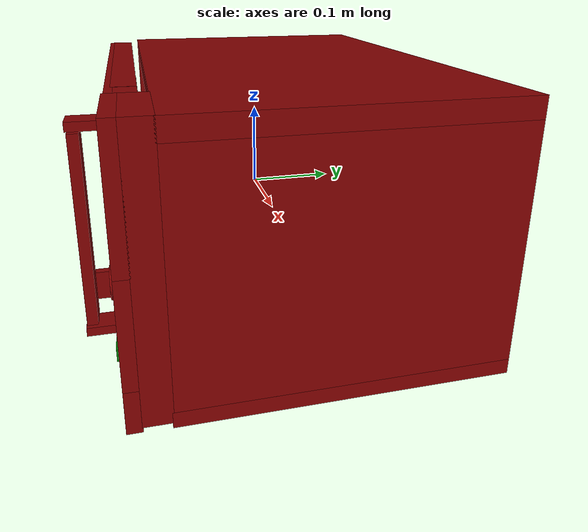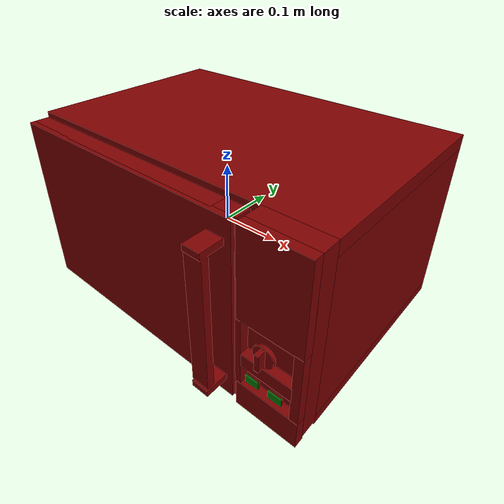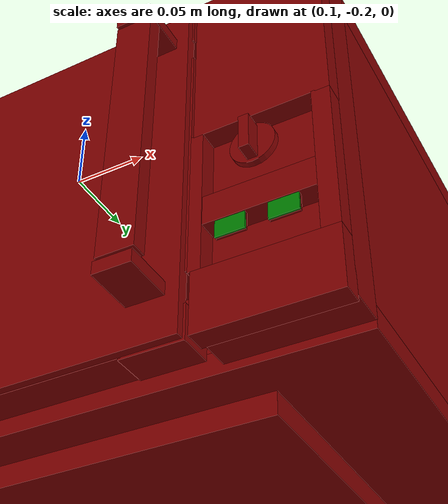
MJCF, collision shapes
<?xml version='1.0' encoding='UTF-8'?>
<mujoco model="model">
  <option timestep="0.002" gravity="0.0 0.0 -9.81"/>
  <compiler angle="radian"/>
  <asset>
    <mesh file="visuals/door.obj" name="door_vis"/>
    <mesh file="visuals/door_Clear.obj" name="door_Clear_vis"/>
    <mesh file="visuals/Body001.obj" name="Body001_vis"/>
    <mesh file="visuals/Button001.obj" name="Button001_vis"/>
    <mesh file="visuals/Button002.obj" name="Button002_vis"/>
    <mesh file="visuals/Disc001.obj" name="Disc001_vis"/>
    <mesh file="visuals/Knob001.obj" name="Knob001_vis"/>
    <texture file="visuals/T_BC001.png" name="Body001_material" type="2d"/>
    <material name="Body001_material" rgba="1 1 1 1.0" texture="Body001_material" shininess="0.2" specular="2"/>
    <texture file="visuals/T_BC001.png" name="door_material" type="2d"/>
    <material name="door_material" rgba="1 1 1 1.0" texture="door_material" shininess="0.4472135901451111" specular="0.3103448502657381"/>
    <texture file="visuals/T_BC001.png" name="door_Clear_material" type="2d"/>
    <material name="door_Clear_material" rgba="1 1 1 0.8557591438293457" texture="door_Clear_material" shininess="0.5" specular="0.3103448502657381"/>
    <texture file="visuals/T_BC001.png" name="Button001_material" type="2d"/>
    <material name="Button001_material" rgba="1 1 1 1.0" texture="Button001_material" shininess="0.4472135901451111" specular="0.3103448502657381"/>
    <texture file="visuals/T_BC001.png" name="Button002_material" type="2d"/>
    <material name="Button002_material" rgba="1 1 1 1.0" texture="Button002_material" shininess="0.4472135901451111" specular="0.3103448502657381"/>
    <texture file="visuals/T_BC001.png" name="Disc001_material" type="2d"/>
    <material name="Disc001_material" rgba="1 1 1 1.0" texture="Disc001_material" shininess="0.1" specular="2"/>
    <texture file="visuals/T_BC001.png" name="Knob001_material" type="2d"/>
    <material name="Knob001_material" rgba="1 1 1 1.0" texture="Knob001_material" shininess="0.4472135901451111" specular="0.3103448502657381"/>
  </asset>
  <default>
    <default class="visual">
      <geom conaffinity="0" contype="0" group="1" type="mesh"/>
    </default>
    <default class="collision">
      <geom group="0" rgba="0.5 0 0 0.5"/>
    </default>
    <default class="spawn">
      <geom group="0" rgba="1 1 1 0.5" contype="0" conaffinity="0"/>
      <site group="0" rgba="1 1 1 0.5"/>
    </default>
    <default class="region">
      <geom group="1" conaffinity="0" contype="0" rgba="0 1 0 0"/>
    </default>
  </default>
  <worldbody>
    <body>
      <body name="object">
        <geom class="collision" type="cylinder" pos="-0.059761423617601395 0.016429780051112175 -0.12128020077943802" size="0.10291451960802078 0.0004692218790296465" quat="1.0 0.0 0.0 0.0" name="tray" rgba="0 1 0 0.5"/>
        <geom class="collision" type="box" pos="0.24567539989948273 -0.18528784811496735 -0.07138217985630035" size="0.010529501363635063 0.0007581537356600165 0.006517592817544937" quat="1.0 0.0 0.0 0.0" name="stop_button" rgba="0.0 0.5 0 0.5"/>
        <geom class="collision" type="box" pos="0.2090815156698227 -0.18528784811496735 -0.07138217985630035" size="0.010529544204473495 0.0007581590325571597 0.006517626345157623" quat="1.0 0.0 0.0 0.0" name="start_button" rgba="0.0 0.5 0 0.5"/>
        <geom mesh="Body001_vis" type="mesh" solimp="0.998 0.998 0.001" solref="0.001 1" friction="0.95 0.3 0.1" class="visual" material="Body001_material"/>
        <geom class="collision" type="box" pos="-2.3066997528076172e-05 0.039480894804000854 -0.1344107687473297" size="0.28024065494537354 0.17873340845108032 0.008647824637591839" quat="1.0 0.0 0.0 0.0"/>
        <geom class="collision" type="box" pos="-0.008200384676456451 0.029451943933963776 -0.1503056138753891" size="0.207381010055542 0.13438034057617188 0.010015944018959999" quat="1.0 0.0 0.0 0.0"/>
        <geom class="collision" type="box" pos="0.2115650475025177 0.03948093205690384 0.010735150426626205" size="0.06865143030881882 0.1787334382534027 0.1371745467185974" quat="1.0 0.0 0.0 0.0"/>
        <geom class="collision" type="box" pos="-2.3052096366882324e-05 0.03948093205690384 0.14929264783859253" size="0.28024062514305115 0.1787334382534027 0.01162742730230093" quat="1.0 0.0 0.0 0.0"/>
        <geom class="collision" type="box" pos="-0.26607438921928406 0.03948093205690384 0.010735150426626205" size="0.014189251698553562 0.17872881889343262 0.13717962801456451" quat="1.0 0.0 0.0 0.0"/>
        <geom class="collision" type="box" pos="-0.0001710653305053711 0.20273303985595703 0.010341539978981018" size="0.2641007900238037 0.015481855720281601 0.13668522238731384" quat="1.0 0.0 0.0 0.0"/>
        <geom class="collision" type="box" pos="0.2299848347902298 -0.1528521031141281 0.011875919066369534" size="0.050232741981744766 0.015066191554069519 0.149148091673851" quat="1.0 0.0 0.0 0.0"/>
        <geom class="collision" type="box" pos="0.2299848347902298 -0.17485365271568298 0.09021499007940292" size="0.050232745707035065 0.007948974147439003 0.0708090215921402" quat="1.0 0.0 0.0 0.0"/>
        <geom class="collision" type="box" pos="0.2299848347902298 -0.17485365271568298 -0.11876236647367477" size="0.050232741981744766 0.007948974147439003 0.02330286055803299" quat="1.0 0.0 0.0 0.0"/>
        <geom class="collision" type="box" pos="0.2735767960548401 -0.17485365271568298 -0.037645623087882996" size="0.00664076441898942 0.007948974147439003 0.05796971544623375" quat="1.0 0.0 0.0 0.0"/>
        <geom class="collision" type="box" pos="0.18247374892234802 -0.17485365271568298 -0.0376456193625927" size="0.004678760655224323 0.007948974147439003 0.05796970799565315" quat="1.0 0.0 0.0 0.0"/>
        <geom class="collision" type="box" pos="0.2277427464723587 -0.17485365271568298 -0.049250662326812744" size="0.040190719068050385 0.007948974147439003 0.011540122330188751" quat="1.0 0.0 0.0 0.0"/>
        <body name="door">
          <joint axis="0.0 0.0 1.0" pos="-0.26329922676086426 -0.16534414887428284 0.010757192969322205" limited="true" name="microjoint" range="-1.5707963267948966 0.0" type="hinge" damping="1" frictionloss="1" armature=".01" stiffness="0.05"/>
          <geom mesh="door_vis" type="mesh" solimp="0.998 0.998 0.001" solref="0.001 1" friction="0.95 0.3 0.1" class="visual" material="door_material"/>
          <geom class="collision" type="box" pos="-0.06214216351509094 -0.16236014664173126 0.13580423593521118" size="0.19804707169532776 0.013243493624031544 0.022893140092492104" quat="1.0 0.0 0.0 0.0"/>
          <geom class="collision" type="box" pos="-0.06600473821163177 -0.16236013174057007 -0.11270149052143097" size="0.19418448209762573 0.0132434768602252 0.024815762415528297" quat="1.0 0.0 0.0 0.0"/>
          <geom class="collision" type="box" pos="-0.23850077390670776 -0.16236013174057007 0.012848451733589172" size="0.021649476140737534 0.0132434768602252 0.10035819560289383" quat="1.0 0.0 0.0 0.0"/>
          <geom class="collision" type="box" pos="0.14541085064411163 -0.16236011683940887 0.012848451733589172" size="0.028212498873472214 0.013243461959064007 0.10035819560289383" quat="1.0 0.0 0.0 0.0"/>
          <geom class="collision" type="box" pos="0.1498573273420334 -0.16235731542110443 -0.1251775026321411" size="0.023682627826929092 0.013240670785307884 0.013537155464291573" quat="1.0 0.0 0.0 0.0"/>
          <geom class="collision" type="box" pos="0.1534009873867035 -0.16236011683940887 0.14593495428562164" size="0.019860822707414627 0.013243461959064007 0.012627840973436832" quat="1.0 0.0 0.0 0.0"/>
          <geom class="collision" type="box" pos="0.14856141805648804 -0.2019350528717041 0.1266351342201233" size="0.014203044585883617 0.01893213577568531 0.004992937669157982" quat="1.0 0.0 0.0 0.0"/>
          <geom class="collision" type="box" pos="0.14856141805648804 -0.2019350528717041 -0.10199031233787537" size="0.014203044585883617 0.01893213577568531 0.004992937669157982" quat="1.0 0.0 0.0 0.0"/>
          <geom class="collision" type="box" pos="0.14856141805648804 -0.21358484029769897 0.013063289225101471" size="0.014203045517206192 0.005871109664440155 0.10662752389907837" quat="1.0 0.0 0.0 0.0" name="door_handle_main"/>
          <geom class="collision" type="box" pos="-0.04953077435493469 -0.16315951943397522 0.012109030969440937" size="0.16435062885284424 0.016595978289842606 0.0968436598777771" quat="1.0 0.0 0.0 0.0"/>
          <geom class="collision" type="box" pos="-0.044218696653842926 -0.17712733149528503 0.010869935154914856" size="0.21597054600715637 0.004278572276234627 0.14782743155956268" quat="1.0 0.0 0.0 0.0" name="door_main"/>
          <body name="door_Clear">
            <geom mesh="door_Clear_vis" type="mesh" solimp="0.998 0.998 0.001" solref="0.001 1" friction="0.95 0.3 0.1" class="visual" material="door_Clear_material"/>
            <geom class="collision" type="box" pos="-0.04953077435493469 -0.16315951943397522 0.012109030969440937" size="0.16435062885284424 0.016595978289842606 0.0968436598777771" quat="1.0 0.0 0.0 0.0"/>
          </body>
        </body>
        <body name="Button001">
          <joint axis="0.0 1.0 0.0" pos="0.2091110348701477 -0.18389424681663513 -0.07123757153749466" limited="true" name="Button001_joint" range="0.0 0.0025" type="slide" damping="1" frictionloss="1" armature=".01" stiffness="0.05"/>
          <geom mesh="Button001_vis" type="mesh" solimp="0.998 0.998 0.001" solref="0.001 1" friction="0.95 0.3 0.1" class="visual" material="Button001_material"/>
          <geom class="collision" type="box" pos="0.2090815156698227 -0.18352563679218292 -0.07138217985630035" size="0.010529530234634876 0.0007581572863273323 0.006517615169286728" quat="1.0 0.0 0.0 0.0"/>
        </body>
        <body name="Button002">
          <joint axis="0.0 1.0 0.0" pos="0.24564091861248016 -0.18389424681663513 -0.07123757898807526" limited="true" name="Button002_joint" range="0.0 0.0025" type="slide" damping="1" frictionloss="1" armature=".01" stiffness="0.05"/>
          <geom mesh="Button002_vis" type="mesh" solimp="0.998 0.998 0.001" solref="0.001 1" friction="0.95 0.3 0.1" class="visual" material="Button002_material"/>
          <geom class="collision" type="box" pos="0.24567539989948273 -0.18352563679218292 -0.07138217985630035" size="0.010529516264796257 0.0007581554818898439 0.0065176039934158325" quat="1.0 0.0 0.0 0.0"/>
        </body>
        <body name="Disc001">
          <joint axis="0.0 0.0 1.0" pos="-0.05964682251214981 0.016020189970731735 -0.12607353925704956" limited="false" name="Disc001_joint" range="0 360" type="hinge" damping="1" frictionloss="1" armature=".01" stiffness="0.05"/>
          <geom mesh="Disc001_vis" type="mesh" solimp="0.998 0.998 0.001" solref="0.001 1" friction="0.95 0.3 0.1" class="visual" material="Disc001_material"/>
          <geom class="collision" type="cylinder" pos="-0.059761423617601395 0.016429780051112175 -0.1228993684053421" size="0.10291451960802078 0.0008281239424832165" quat="1.0 0.0 0.0 0.0"/>
        </body>
        <body name="Knob001">
          <joint axis="0.0 1.0 0.0" pos="0.22610574960708618 -0.18846583366394043 -0.010493787005543709" limited="true" name="Knob001_joint" range="0.0 5.235987755982989" type="hinge" damping="0.05" frictionloss="0.75" armature="0.5"/>
          <geom mesh="Knob001_vis" type="mesh" solimp="0.998 0.998 0.001" solref="0.001 1" friction="0.95 0.3 0.1" class="visual" material="Knob001_material"/>
          <geom class="collision" type="cylinder" pos="0.2261015623807907 -0.18467946350574493 -0.010438723489642143" size="0.01641750894486904 0.0023787273094058037" quat="0.7071068286895752 0.7071067690849304 0.0 0.0" friction="100 0.5 0.01"/>
          <geom class="collision" type="box" pos="0.22619464993476868 -0.1932138353586197 -0.010462941601872444" size="0.0036713751032948494 0.0063153402879834175 0.01372908242046833" quat="1.0 0.0 0.0 0.0" friction="100 0.5 0.01"/>
        </body>
        <geom class="region" name="reg_int" type="box" pos="-0.054292261600494385 0.020279869437217712 0.0067484937608242035" size="0.19432920014858246 0.16580566561222077 0.12855945697426796"/>
        <geom class="region" name="reg_main" type="box" pos="-2.3029744625091553e-05 0.01770583540201187 1.564621925354004e-07" size="0.28124062514305115 0.2015084753036499 0.1620238552093506"/>
      <geom class="region" name="reg_tray" type="cylinder" pos="-0.059761423617601395 0.016429780051112175 0.007248485917341896" size="0.10291451960802078 0.12705946481775027"/></body>
    </body>
  </worldbody>
  <actuator>
    <motor name="microjoint_actuator" joint="microjoint" gear="10"/>
    <motor name="Button001_joint_actuator" joint="Button001_joint" gear="0.5"/>
    <motor name="Button002_joint_actuator" joint="Button002_joint" gear="0.5"/>
    <motor name="Disc001_joint_actuator" joint="Disc001_joint" gear="0.5"/>
    <motor name="Knob001_joint_actuator" joint="Knob001_joint" gear="0.5"/>
  </actuator>
</mujoco>
